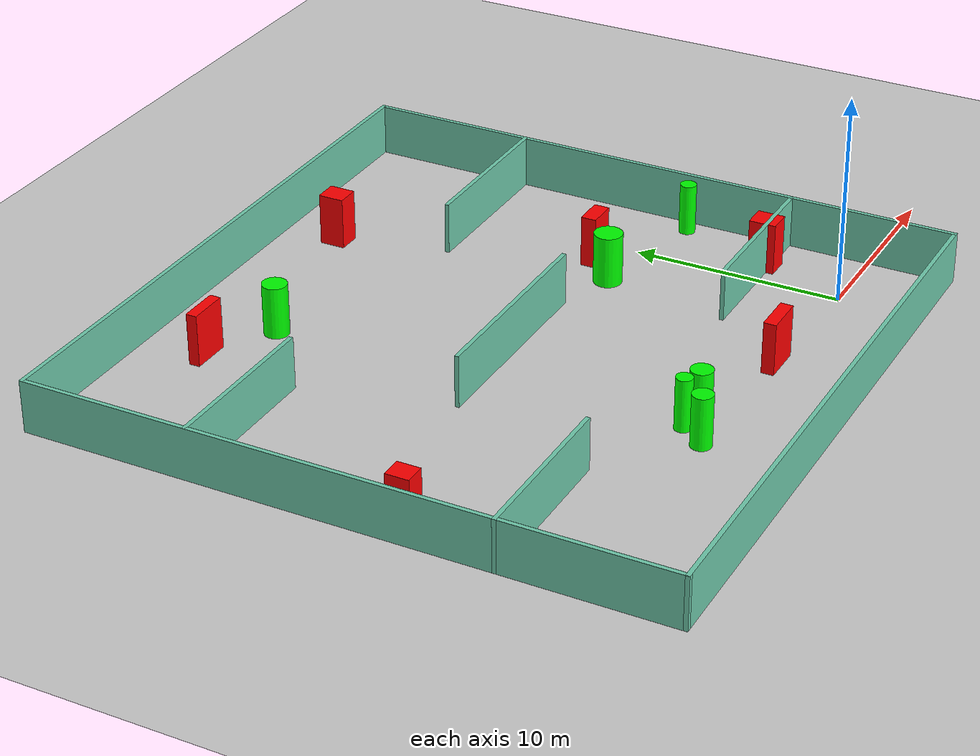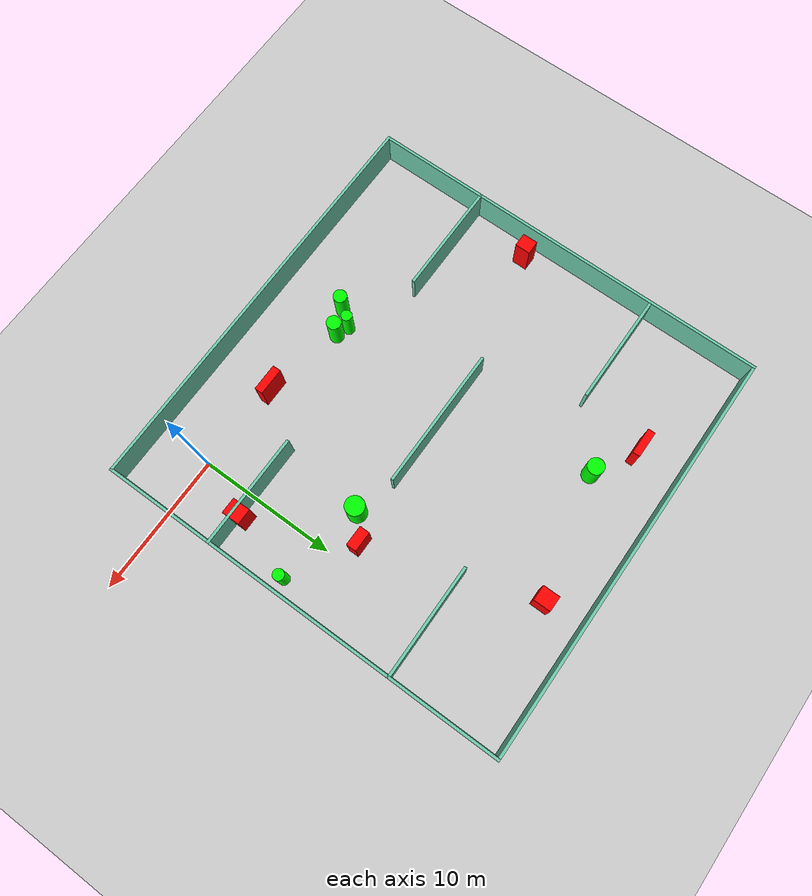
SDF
<sdf version="1.7">
 <world name="default">
  <light name="sun" type="directional">
   <pose>0 0 10 0 -0 0</pose>
   <diffuse>0.8 0.8 0.8 1</diffuse>
   <specular>0.2 0.2 0.2 1</specular>
   <attenuation>
    <range>1000</range>
    <constant>0.9</constant>
    <linear>0.01</linear>
    <quadratic>0.001</quadratic>
   </attenuation>
   <direction>-0.5 0.1 -0.9</direction>
   <spot><inner_angle>0</inner_angle><outer_angle>0</outer_angle><falloff>0</falloff></spot>
  </light>
  <model name="ground_plane">
   <static>1</static>
   <link name="link">
    <collision name="collision">
     <geometry><plane><normal>0 0 1</normal><size>100 100</size></plane></geometry>
     <surface>
      <contact><collide_bitmask>65535</collide_bitmask></contact>
      <friction><ode><mu>100</mu><mu2>50</mu2></ode></friction>
     </surface>
    </collision>
    <visual name="visual">
     <cast_shadows>0</cast_shadows>
     <geometry><plane><normal>0 0 1</normal><size>100 100</size></plane></geometry>
     <material>
      <script><uri>file://media/materials/scripts/gazebo.material</uri><name>Gazebo/Grey</name></script>
     </material>
    </visual>
   </link>
  </model>
  <gravity>0 0 -9.8</gravity>
  <magnetic_field>6e-06 2.3e-05 -4.2e-05</magnetic_field>
  <atmosphere type="adiabatic"/>
  <physics type="ode">
   <max_step_size>0.001</max_step_size>
   <real_time_factor>1</real_time_factor>
   <real_time_update_rate>1000</real_time_update_rate>
  </physics>
  <scene><ambient>0.4 0.4 0.4 1</ambient><background>0.7 0.7 0.7 1</background><shadows>1</shadows></scene>
  <spherical_coordinates>
   <surface_model>EARTH_WGS84</surface_model>
   <latitude_deg>0</latitude_deg>
   <longitude_deg>0</longitude_deg>
   <elevation>0</elevation>
   <heading_deg>0</heading_deg>
  </spherical_coordinates>
  <model name="my_base_walls">
   <link name="Wall_10">
    <collision name="Wall_10_Collision">
     <geometry><box><size>8.2 0.2 2.5</size></box></geometry>
     <pose>0 0 1.25 0 -0 0</pose>
    </collision>
    <visual name="Wall_10_Visual">
     <pose>0 0 1.25 0 -0 0</pose>
     <geometry><box><size>8.2 0.2 2.5</size></box></geometry>
     <material>
      <script><uri>file://media/materials/scripts/gazebo.material</uri><name>Gazebo/Grey</name></script>
      <ambient>0.435294 0.796078 0.67451 1</ambient>
     </material>
     <meta><layer>0</layer></meta>
    </visual>
    <pose>-11 -7 0 0 -0 0</pose>
   </link>
   <link name="Wall_12">
    <collision name="Wall_12_Collision">
     <geometry><box><size>8.2 0.2 2.5</size></box></geometry>
     <pose>0 0 1.25 0 -0 0</pose>
    </collision>
    <visual name="Wall_12_Visual">
     <pose>0 0 1.25 0 -0 0</pose>
     <geometry><box><size>8.2 0.2 2.5</size></box></geometry>
     <material>
      <script><uri>file://media/materials/scripts/gazebo.material</uri><name>Gazebo/Grey</name></script>
      <ambient>0.435294 0.796078 0.67451 1</ambient>
     </material>
     <meta><layer>0</layer></meta>
    </visual>
    <pose>-11 7 0 0 -0 0</pose>
   </link>
   <link name="Wall_14">
    <collision name="Wall_14_Collision">
     <geometry><box><size>8.2 0.2 2.5</size></box></geometry>
     <pose>0 0 1.25 0 -0 0</pose>
    </collision>
    <visual name="Wall_14_Visual">
     <pose>0 0 1.25 0 -0 0</pose>
     <geometry><box><size>8.2 0.2 2.5</size></box></geometry>
     <material>
      <script><uri>file://media/materials/scripts/gazebo.material</uri><name>Gazebo/Grey</name></script>
      <ambient>0.435294 0.796078 0.67451 1</ambient>
     </material>
     <meta><layer>0</layer></meta>
    </visual>
    <pose>11 7 0 0 -0 3.14159</pose>
   </link>
   <link name="Wall_16">
    <collision name="Wall_16_Collision">
     <geometry><box><size>10.2 0.2 2.5</size></box></geometry>
     <pose>0 0 1.25 0 -0 0</pose>
    </collision>
    <visual name="Wall_16_Visual">
     <pose>0 0 1.25 0 -0 0</pose>
     <geometry><box><size>10.2 0.2 2.5</size></box></geometry>
     <material>
      <script><uri>file://media/materials/scripts/gazebo.material</uri><name>Gazebo/Grey</name></script>
      <ambient>0.435294 0.796078 0.67451 1</ambient>
     </material>
     <meta><layer>0</layer></meta>
    </visual>
    <pose>0 0 0 0 -0 3.14159</pose>
   </link>
   <link name="Wall_2">
    <collision name="Wall_2_Collision">
     <geometry><box><size>30.2 0.2 2.5</size></box></geometry>
     <pose>0 0 1.25 0 -0 0</pose>
    </collision>
    <visual name="Wall_2_Visual">
     <pose>0 0 1.25 0 -0 0</pose>
     <geometry><box><size>30.2 0.2 2.5</size></box></geometry>
     <material>
      <script><uri>file://media/materials/scripts/gazebo.material</uri><name>Gazebo/Grey</name></script>
      <ambient>0.435294 0.796078 0.67451 1</ambient>
     </material>
     <meta><layer>0</layer></meta>
    </visual>
    <pose>0 -15 0 0 -0 3.14159</pose>
   </link>
   <link name="Wall_3">
    <collision name="Wall_3_Collision">
     <geometry><box><size>30.2 0.2 2.5</size></box></geometry>
     <pose>0 0 1.25 0 -0 0</pose>
    </collision>
    <visual name="Wall_3_Visual">
     <pose>0 0 1.25 0 -0 0</pose>
     <geometry><box><size>30.2 0.2 2.5</size></box></geometry>
     <material>
      <script><uri>file://media/materials/scripts/gazebo.material</uri><name>Gazebo/Grey</name></script>
      <ambient>0.435294 0.796078 0.67451 1</ambient>
     </material>
     <meta><layer>0</layer></meta>
    </visual>
    <pose>-15 0 0 0 -0 1.5708</pose>
   </link>
   <link name="Wall_4">
    <collision name="Wall_4_Collision">
     <geometry><box><size>30.2 0.2 2.5</size></box></geometry>
     <pose>0 0 1.25 0 -0 0</pose>
    </collision>
    <visual name="Wall_4_Visual">
     <pose>0 0 1.25 0 -0 0</pose>
     <geometry><box><size>30.2 0.2 2.5</size></box></geometry>
     <material>
      <script><uri>file://media/materials/scripts/gazebo.material</uri><name>Gazebo/Grey</name></script>
      <ambient>0.435294 0.796078 0.67451 1</ambient>
     </material>
     <meta><layer>0</layer></meta>
    </visual>
    <pose>0 15 0 0 -0 0</pose>
   </link>
   <link name="Wall_6">
    <collision name="Wall_6_Collision">
     <geometry><box><size>30.2 0.2 2.5</size></box></geometry>
     <pose>0 0 1.25 0 -0 0</pose>
    </collision>
    <visual name="Wall_6_Visual">
     <pose>0 0 1.25 0 -0 0</pose>
     <geometry><box><size>30.2 0.2 2.5</size></box></geometry>
     <material>
      <script><uri>file://media/materials/scripts/gazebo.material</uri><name>Gazebo/Grey</name></script>
      <ambient>0.435294 0.796078 0.67451 1</ambient>
     </material>
     <meta><layer>0</layer></meta>
    </visual>
    <pose>15 0 0 0 -0 1.5708</pose>
   </link>
   <link name="Wall_8">
    <collision name="Wall_8_Collision">
     <geometry><box><size>8.2 0.2 2.5</size></box></geometry>
     <pose>0 0 1.25 0 -0 0</pose>
    </collision>
    <visual name="Wall_8_Visual">
     <pose>0 0 1.25 0 -0 0</pose>
     <geometry><box><size>8.2 0.2 2.5</size></box></geometry>
     <material>
      <script><uri>file://media/materials/scripts/gazebo.material</uri><name>Gazebo/Grey</name></script>
      <ambient>0.435294 0.796078 0.67451 1</ambient>
     </material>
     <meta><layer>0</layer></meta>
    </visual>
    <pose>11 -7 0 0 -0 3.14159</pose>
   </link>
   <static>1</static>
   <pose>-11 11 0 0 -0 0</pose>
  </model>
  <model name="cylinder1">
   <static>1</static>
   <link name="link">
    <inertial>
     <mass>1</mass>
     <inertia><ixx>0.5</ixx><ixy>0</ixy><ixz>0</ixz><iyy>0.5</iyy><iyz>0</iyz><izz>1</izz></inertia>
    </inertial>
    <collision name="collision">
     <geometry><cylinder><radius>0.3886881752777797</radius><length>2.5</length></cylinder></geometry>
    </collision>
    <visual name="visual">
     <geometry><cylinder><radius>0.3886881752777797</radius><length>2.5</length></cylinder></geometry>
     <material>
      <ambient>0 1 0 1</ambient>
      <diffuse>0 1 0 1</diffuse>
      <specular>0.1 0.1 0.1 1</specular>
      <emissive>0 0 0 0</emissive>
     </material>
    </visual>
   </link>
   <pose>-13.24693251636102 1.820221296812245 1.25 0 0 0</pose>
  </model>
  <model name="cylinder2">
   <static>1</static>
   <link name="link">
    <inertial>
     <mass>1</mass>
     <inertia><ixx>0.5</ixx><ixy>0</ixy><ixz>0</ixz><iyy>0.5</iyy><iyz>0</iyz><izz>1</izz></inertia>
    </inertial>
    <collision name="collision">
     <geometry><cylinder><radius>0.6812573125776897</radius><length>2.5</length></cylinder></geometry>
    </collision>
    <visual name="visual">
     <geometry><cylinder><radius>0.6812573125776897</radius><length>2.5</length></cylinder></geometry>
     <material>
      <ambient>0 1 0 1</ambient>
      <diffuse>0 1 0 1</diffuse>
      <specular>0.1 0.1 0.1 1</specular>
      <emissive>0 0 0 0</emissive>
     </material>
    </visual>
   </link>
   <pose>-3.1669154105440533 10.086572278859894 1.25 0 0 0</pose>
  </model>
  <model name="cylinder3">
   <static>1</static>
   <link name="link">
    <inertial>
     <mass>1</mass>
     <inertia><ixx>0.5</ixx><ixy>0</ixy><ixz>0</ixz><iyy>0.5</iyy><iyz>0</iyz><izz>1</izz></inertia>
    </inertial>
    <collision name="collision">
     <geometry><cylinder><radius>0.5131390580678109</radius><length>2.5</length></cylinder></geometry>
    </collision>
    <visual name="visual">
     <geometry><cylinder><radius>0.5131390580678109</radius><length>2.5</length></cylinder></geometry>
     <material>
      <ambient>0 1 0 1</ambient>
      <diffuse>0 1 0 1</diffuse>
      <specular>0.1 0.1 0.1 1</specular>
      <emissive>0 0 0 0</emissive>
     </material>
    </visual>
   </link>
   <pose>-12.338542185702 1.4269604704648948 1.25 0 0 0</pose>
  </model>
  <model name="cylinder4">
   <static>1</static>
   <link name="link">
    <inertial>
     <mass>1</mass>
     <inertia><ixx>0.5</ixx><ixy>0</ixy><ixz>0</ixz><iyy>0.5</iyy><iyz>0</iyz><izz>1</izz></inertia>
    </inertial>
    <collision name="collision">
     <geometry><cylinder><radius>0.3947406403360914</radius><length>2.5</length></cylinder></geometry>
    </collision>
    <visual name="visual">
     <geometry><cylinder><radius>0.3947406403360914</radius><length>2.5</length></cylinder></geometry>
     <material>
      <ambient>0 1 0 1</ambient>
      <diffuse>0 1 0 1</diffuse>
      <specular>0.1 0.1 0.1 1</specular>
      <emissive>0 0 0 0</emissive>
     </material>
    </visual>
   </link>
   <pose>3.0387346573914016 8.840064139688595 1.25 0 0 0</pose>
  </model>
  <model name="cylinder5">
   <static>1</static>
   <link name="link">
    <inertial>
     <mass>1</mass>
     <inertia><ixx>0.5</ixx><ixy>0</ixy><ixz>0</ixz><iyy>0.5</iyy><iyz>0</iyz><izz>1</izz></inertia>
    </inertial>
    <collision name="collision">
     <geometry><cylinder><radius>0.4833770957504301</radius><length>2.5</length></cylinder></geometry>
    </collision>
    <visual name="visual">
     <geometry><cylinder><radius>0.4833770957504301</radius><length>2.5</length></cylinder></geometry>
     <material>
      <ambient>0 1 0 1</ambient>
      <diffuse>0 1 0 1</diffuse>
      <specular>0.1 0.1 0.1 1</specular>
      <emissive>0 0 0 0</emissive>
     </material>
    </visual>
   </link>
   <pose>-14.120560831444399 0.6109562869260907 1.25 0 0 0</pose>
  </model>
  <model name="cylinder6">
   <static>1</static>
   <link name="link">
    <inertial>
     <mass>1</mass>
     <inertia><ixx>0.5</ixx><ixy>0</ixy><ixz>0</ixz><iyy>0.5</iyy><iyz>0</iyz><izz>1</izz></inertia>
    </inertial>
    <collision name="collision">
     <geometry><cylinder><radius>0.5898975442786054</radius><length>2.5</length></cylinder></geometry>
    </collision>
    <visual name="visual">
     <geometry><cylinder><radius>0.5898975442786054</radius><length>2.5</length></cylinder></geometry>
     <material>
      <ambient>0 1 0 1</ambient>
      <diffuse>0 1 0 1</diffuse>
      <specular>0.1 0.1 0.1 1</specular>
      <emissive>0 0 0 0</emissive>
     </material>
    </visual>
   </link>
   <pose>-14.220974268983127 21.11918184720134 1.25 0 0 0</pose>
  </model>
  <model name="box1">
   <static>1</static>
   <link name="link">
    <inertial>
     <mass>1</mass>
     <inertia><ixx>0.083</ixx><ixy>0</ixy><ixz>0</ixz><iyy>0.083</iyy><iyz>0</iyz><izz>0.083</izz></inertia>
    </inertial>
    <collision name="collision">
     <geometry><box><size>1.1411637087815691 1.2964164454682283 2.5</size></box></geometry>
    </collision>
    <visual name="visual">
     <geometry><box><size>1.1411637087815691 1.2964164454682283 2.5</size></box></geometry>
     <material>
      <ambient>1 0 0 1</ambient>
      <diffuse>1 0 0 1</diffuse>
      <specular>0.1 0.1 0.1 1</specular>
      <emissive>0 0 0 0</emissive>
     </material>
    </visual>
    <sensor name="my_contact" type="contact">
     <contact><collision>box_collision</collision><topic>__default_topic__</topic></contact>
    </sensor>
   </link>
   <pose>1.4669622560903832 4.189874682939179 1.25 0 0 0</pose>
  </model>
  <model name="box2">
   <static>1</static>
   <link name="link">
    <inertial>
     <mass>1</mass>
     <inertia><ixx>0.083</ixx><ixy>0</ixy><ixz>0</ixz><iyy>0.083</iyy><iyz>0</iyz><izz>0.083</izz></inertia>
    </inertial>
    <collision name="collision">
     <geometry><box><size>1.9171019528096533 0.5169203718444775 2.5</size></box></geometry>
    </collision>
    <visual name="visual">
     <geometry><box><size>1.9171019528096533 0.5169203718444775 2.5</size></box></geometry>
     <material>
      <ambient>1 0 0 1</ambient>
      <diffuse>1 0 0 1</diffuse>
      <specular>0.1 0.1 0.1 1</specular>
      <emissive>0 0 0 0</emissive>
     </material>
    </visual>
    <sensor name="my_contact" type="contact">
     <contact><collision>box_collision</collision><topic>__default_topic__</topic></contact>
    </sensor>
   </link>
   <pose>-17.34582303075721 22.800056511155443 1.25 0 0 0</pose>
  </model>
  <model name="box3">
   <static>1</static>
   <link name="link">
    <inertial>
     <mass>1</mass>
     <inertia><ixx>0.083</ixx><ixy>0</ixy><ixz>0</ixz><iyy>0.083</iyy><iyz>0</iyz><izz>0.083</izz></inertia>
    </inertial>
    <collision name="collision">
     <geometry><box><size>1.438745504782275 0.7300454394421592 2.5</size></box></geometry>
    </collision>
    <visual name="visual">
     <geometry><box><size>1.438745504782275 0.7300454394421592 2.5</size></box></geometry>
     <material>
      <ambient>1 0 0 1</ambient>
      <diffuse>1 0 0 1</diffuse>
      <specular>0.1 0.1 0.1 1</specular>
      <emissive>0 0 0 0</emissive>
     </material>
    </visual>
    <sensor name="my_contact" type="contact">
     <contact><collision>box_collision</collision><topic>__default_topic__</topic></contact>
    </sensor>
   </link>
   <pose>-1.6151230472324727 11.504748381585632 1.25 0 0 0</pose>
  </model>
  <model name="box4">
   <static>1</static>
   <link name="link">
    <inertial>
     <mass>1</mass>
     <inertia><ixx>0.083</ixx><ixy>0</ixy><ixz>0</ixz><iyy>0.083</iyy><iyz>0</iyz><izz>0.083</izz></inertia>
    </inertial>
    <collision name="collision">
     <geometry><box><size>1.9509328700349382 0.5921126254816881 2.5</size></box></geometry>
    </collision>
    <visual name="visual">
     <geometry><box><size>1.9509328700349382 0.5921126254816881 2.5</size></box></geometry>
     <material>
      <ambient>1 0 0 1</ambient>
      <diffuse>1 0 0 1</diffuse>
      <specular>0.1 0.1 0.1 1</specular>
      <emissive>0 0 0 0</emissive>
     </material>
    </visual>
    <sensor name="my_contact" type="contact">
     <contact><collision>box_collision</collision><topic>__default_topic__</topic></contact>
    </sensor>
   </link>
   <pose>-6.586556627806289 0.35254807258519927 1.25 0 0 0</pose>
  </model>
  <model name="box5">
   <static>1</static>
   <link name="link">
    <inertial>
     <mass>1</mass>
     <inertia><ixx>0.083</ixx><ixy>0</ixy><ixz>0</ixz><iyy>0.083</iyy><iyz>0</iyz><izz>0.083</izz></inertia>
    </inertial>
    <collision name="collision">
     <geometry><box><size>0.996335627656008 1.1091444555260597 2.5</size></box></geometry>
    </collision>
    <visual name="visual">
     <geometry><box><size>0.996335627656008 1.1091444555260597 2.5</size></box></geometry>
     <material>
      <ambient>1 0 0 1</ambient>
      <diffuse>1 0 0 1</diffuse>
      <specular>0.1 0.1 0.1 1</specular>
      <emissive>0 0 0 0</emissive>
     </material>
    </visual>
    <sensor name="my_contact" type="contact">
     <contact><collision>box_collision</collision><topic>__default_topic__</topic></contact>
    </sensor>
   </link>
   <pose>-24.7466803486998 8.696218710136705 1.25 0 0 0</pose>
  </model>
  <model name="box6">
   <static>1</static>
   <link name="link">
    <inertial>
     <mass>1</mass>
     <inertia><ixx>0.083</ixx><ixy>0</ixy><ixz>0</ixz><iyy>0.083</iyy><iyz>0</iyz><izz>0.083</izz></inertia>
    </inertial>
    <collision name="collision">
     <geometry><box><size>1.1067573605782148 1.228791704783368 2.5</size></box></geometry>
    </collision>
    <visual name="visual">
     <geometry><box><size>1.1067573605782148 1.228791704783368 2.5</size></box></geometry>
     <material>
      <ambient>1 0 0 1</ambient>
      <diffuse>1 0 0 1</diffuse>
      <specular>0.1 0.1 0.1 1</specular>
      <emissive>0 0 0 0</emissive>
     </material>
    </visual>
    <sensor name="my_contact" type="contact">
     <contact><collision>box_collision</collision><topic>__default_topic__</topic></contact>
    </sensor>
   </link>
   <pose>-5.427001961330079 23.16253016276935 1.25 0 0 0</pose>
  </model>
 </world>
</sdf>
